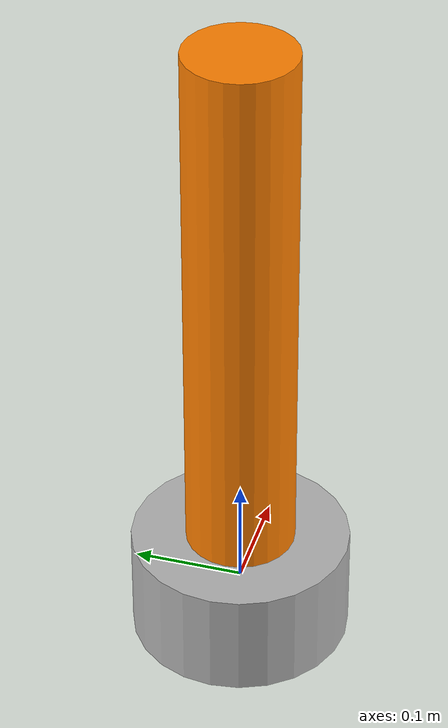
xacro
<?xml version="1.0"?>
<robot xmlns:xacro="http://www.ros.org/wiki/xacro" name="mock_robot">

  <xacro:include filename="$(find mock_serial_interface)/description/ros2_control.xacro" />

  <link name="world"/>

  <link name="base_link">
    <visual>
      <geometry>
        <cylinder length="0.1" radius="0.1"/>
      </geometry>
      <material name="grey">
        <color rgba="0.7 0.7 0.7 1"/>
      </material>
    </visual>
  </link>

  <joint name="base_joint" type="fixed">
    <parent link="world"/>
    <child link="base_link"/>
  </joint>

  <link name="link1">
    <visual>
      <origin xyz="0 0 0.25" rpy="0 0 0"/>
      <geometry>
        <cylinder length="0.5" radius="0.05"/>
      </geometry>
      <material name="orange">
        <color rgba="1 0.5 0 1"/>
      </material>
    </visual>
  </link>

  <joint name="joint1" type="revolute">
    <parent link="base_link"/>
    <child link="link1"/>
    <origin xyz="0 0 0.05" rpy="0 0 0"/>
    <axis xyz="0 0 1"/>
    <limit lower="-3.14" upper="3.14" effort="10.0" velocity="2.0"/>
  </joint>

  <xacro:mock_ros2_control name="MockRobot" />

</robot>
